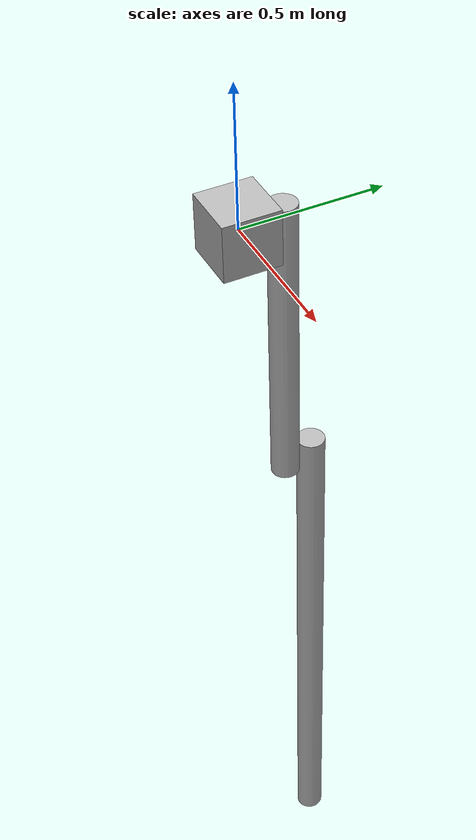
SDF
<?xml version="1.0"?>
<sdf version="1.7">
  <model name="Acrobot">
    <link name="base_link">
      <collision name="base_link_collision">
        <geometry>
          <box>
            <size>0.2 0.2 0.2</size>
          </box>
        </geometry>
      </collision>
      <visual name="base_link_visual">
        <geometry>
          <box>
            <size>0.2 0.2 0.2</size>
          </box>
        </geometry>
      </visual>
    </link>
    <joint name="base_weld" type="fixed">
      <child>base_link</child>
      <parent>world</parent>
    </joint>
    <link name="upper_link">
      <pose>0 0.15 0 0 0 0</pose>
      <inertial>
        <pose>0 0 -0.5 0 0 0</pose>
        <mass>1</mass>
        <inertia>
          <ixx>1</ixx>
          <ixy>0</ixy>
          <ixz>0</ixz>
          <iyy>0.083</iyy>
          <iyz>0</iyz>
          <izz>1</izz>
        </inertia>
      </inertial>
      <collision name="upper_link_collision">
        <pose>0 0 -0.5 0 0 0</pose>
        <geometry>
          <cylinder>
            <length>1.1</length>
            <radius>0.05</radius>
          </cylinder>
        </geometry>
      </collision>
      <visual name="upper_link_visual">
        <pose>0 0 -0.5 0 0 0</pose>
        <geometry>
          <cylinder>
            <length>1.1</length>
            <radius>0.05</radius>
          </cylinder>
        </geometry>
      </visual>
    </link>
    <joint name="shoulder" type="revolute">
      <child>upper_link</child>
      <parent>base_link</parent>
      <axis>
        <xyz expressed_in="__model__">0 1 0</xyz>
        <limit>
          <effort>0</effort>
        </limit>
        <dynamics>
          <damping>0.1</damping>
          <friction>0</friction>
          <spring_reference>0</spring_reference>
          <spring_stiffness>0</spring_stiffness>
        </dynamics>
      </axis>
    </joint>
    <link name="lower_link">
      <pose>0 0.25 -1 0 0 0</pose>
      <inertial>
        <pose>0 0 -1 0 0 0</pose>
        <mass>1</mass>
        <inertia>
          <ixx>1</ixx>
          <ixy>0</ixy>
          <ixz>0</ixz>
          <iyy>0.33</iyy>
          <iyz>0</iyz>
          <izz>1</izz>
        </inertia>
      </inertial>
      <collision name="lower_link_collision">
        <pose>0 0 -1 0 0 0</pose>
        <geometry>
          <cylinder>
            <length>2.1</length>
            <radius>0.05</radius>
          </cylinder>
        </geometry>
      </collision>
      <visual name="lower_link_visual">
        <pose>0 0 -1 0 0 0</pose>
        <geometry>
          <cylinder>
            <length>2.1</length>
            <radius>0.05</radius>
          </cylinder>
        </geometry>
      </visual>
    </link>
    <joint name="elbow" type="revolute">
      <child>lower_link</child>
      <parent>upper_link</parent>
      <axis>
        <xyz expressed_in="__model__">0 1 0</xyz>
        <limit>
        </limit>
        <dynamics>
          <damping>0.1</damping>
          <friction>0</friction>
          <spring_reference>0</spring_reference>
          <spring_stiffness>0</spring_stiffness>
        </dynamics>
      </axis>
    </joint>
    <frame name="hand">
      <pose relative_to="lower_link">0 0 -2.1 0 0 0</pose>
    </frame>
  </model>
</sdf>
